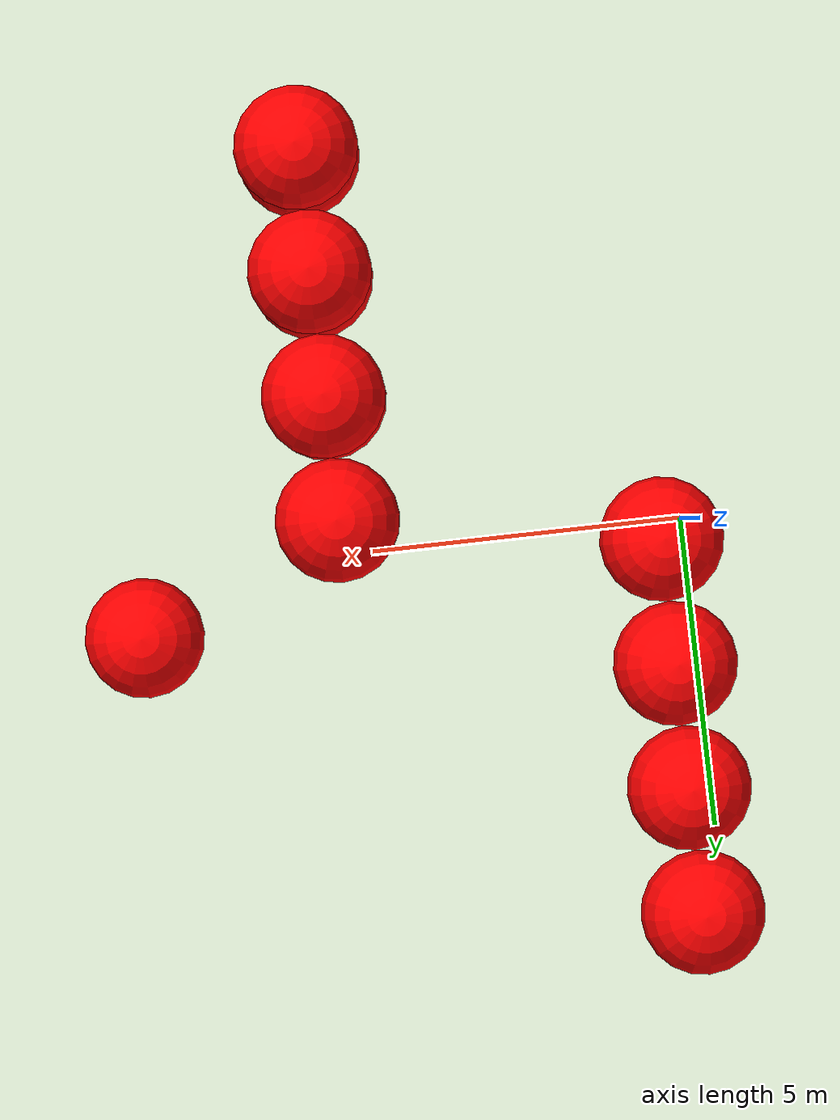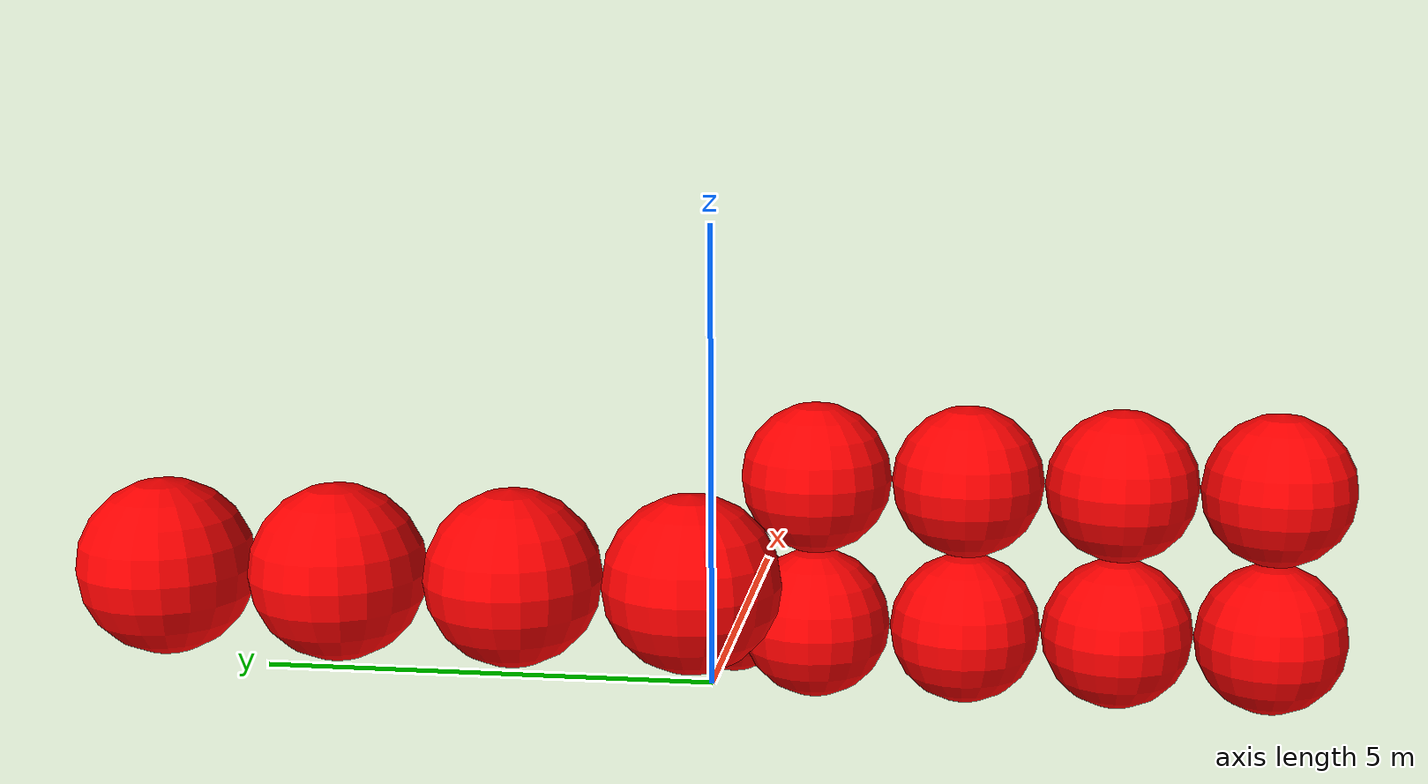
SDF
<sdf version="1.8">
 <world name="3d_world">
  <model name="obstacle_9" canonical_link="obstacle">
   <static>true</static>
   <pose relative_to="world">0.39 0.29 1.00 0 0 0</pose>
   <link name="obstacle">
    <pose relative_to="__model__">0.0 0 0.0 0 0 0</pose>
    <visual name="visual">
     <geometry><sphere><radius>1.00</radius></sphere></geometry>
     <material>
      <ambient>1.0 0.0 0.0 1</ambient>
      <diffuse>1.0 0.0 0.0 1</diffuse>
      <specular>1.0 0.0 0.0 1</specular>
     </material>
    </visual>
    <collision name="collision"><geometry><sphere><radius>1.00</radius></sphere></geometry></collision>
    <enable_gravity>false</enable_gravity>
   </link>
   <plugin filename="ignition-gazebo-velocity-control-system" name="ignition::gazebo::systems::VelocityControl">
    <initial_linear>0.00 0.00 0.00</initial_linear>
    <initial_angular>0 0 0</initial_angular>
   </plugin>
   <plugin filename="ignition-gazebo-odometry-publisher-system" name="ignition::gazebo::systems::OdometryPublisher">
    <dimensions>3</dimensions>
   </plugin>
  </model>
  <model name="obstacle_10" canonical_link="obstacle">
   <static>true</static>
   <pose relative_to="world">0.39 2.29 1.00 0 0 0</pose>
   <link name="obstacle">
    <pose relative_to="__model__">0.0 0 0.0 0 0 0</pose>
    <visual name="visual">
     <geometry><sphere><radius>1.00</radius></sphere></geometry>
     <material>
      <ambient>1.0 0.0 0.0 1</ambient>
      <diffuse>1.0 0.0 0.0 1</diffuse>
      <specular>1.0 0.0 0.0 1</specular>
     </material>
    </visual>
    <collision name="collision"><geometry><sphere><radius>1.00</radius></sphere></geometry></collision>
    <enable_gravity>false</enable_gravity>
   </link>
   <plugin filename="ignition-gazebo-velocity-control-system" name="ignition::gazebo::systems::VelocityControl">
    <initial_linear>0.00 0.00 0.00</initial_linear>
    <initial_angular>0 0 0</initial_angular>
   </plugin>
   <plugin filename="ignition-gazebo-odometry-publisher-system" name="ignition::gazebo::systems::OdometryPublisher">
    <dimensions>3</dimensions>
   </plugin>
  </model>
  <model name="obstacle_11" canonical_link="obstacle">
   <static>true</static>
   <pose relative_to="world">0.39 4.29 1.00 0 0 0</pose>
   <link name="obstacle">
    <pose relative_to="__model__">0.0 0 0.0 0 0 0</pose>
    <visual name="visual">
     <geometry><sphere><radius>1.00</radius></sphere></geometry>
     <material>
      <ambient>1.0 0.0 0.0 1</ambient>
      <diffuse>1.0 0.0 0.0 1</diffuse>
      <specular>1.0 0.0 0.0 1</specular>
     </material>
    </visual>
    <collision name="collision"><geometry><sphere><radius>1.00</radius></sphere></geometry></collision>
    <enable_gravity>false</enable_gravity>
   </link>
   <plugin filename="ignition-gazebo-velocity-control-system" name="ignition::gazebo::systems::VelocityControl">
    <initial_linear>0.00 0.00 0.00</initial_linear>
    <initial_angular>0 0 0</initial_angular>
   </plugin>
   <plugin filename="ignition-gazebo-odometry-publisher-system" name="ignition::gazebo::systems::OdometryPublisher">
    <dimensions>3</dimensions>
   </plugin>
  </model>
  <model name="obstacle_12" canonical_link="obstacle">
   <static>true</static>
   <pose relative_to="world">0.39 6.29 1.00 0 0 0</pose>
   <link name="obstacle">
    <pose relative_to="__model__">0.0 0 0.0 0 0 0</pose>
    <visual name="visual">
     <geometry><sphere><radius>1.00</radius></sphere></geometry>
     <material>
      <ambient>1.0 0.0 0.0 1</ambient>
      <diffuse>1.0 0.0 0.0 1</diffuse>
      <specular>1.0 0.0 0.0 1</specular>
     </material>
    </visual>
    <collision name="collision"><geometry><sphere><radius>1.00</radius></sphere></geometry></collision>
    <enable_gravity>false</enable_gravity>
   </link>
   <plugin filename="ignition-gazebo-velocity-control-system" name="ignition::gazebo::systems::VelocityControl">
    <initial_linear>0.00 0.00 0.00</initial_linear>
    <initial_angular>0 0 0</initial_angular>
   </plugin>
   <plugin filename="ignition-gazebo-odometry-publisher-system" name="ignition::gazebo::systems::OdometryPublisher">
    <dimensions>3</dimensions>
   </plugin>
  </model>
  <model name="obstacle_13" canonical_link="obstacle">
   <static>true</static>
   <pose relative_to="world">5.51 -6.58 -1.00 0 0 0</pose>
   <link name="obstacle">
    <pose relative_to="__model__">0.0 0 0.0 0 0 0</pose>
    <visual name="visual">
     <geometry><sphere><radius>1.00</radius></sphere></geometry>
     <material>
      <ambient>1.0 0.0 0.0 1</ambient>
      <diffuse>1.0 0.0 0.0 1</diffuse>
      <specular>1.0 0.0 0.0 1</specular>
     </material>
    </visual>
    <collision name="collision"><geometry><sphere><radius>1.00</radius></sphere></geometry></collision>
    <enable_gravity>false</enable_gravity>
   </link>
   <plugin filename="ignition-gazebo-velocity-control-system" name="ignition::gazebo::systems::VelocityControl">
    <initial_linear>0.00 0.00 0.00</initial_linear>
    <initial_angular>0 0 0</initial_angular>
   </plugin>
   <plugin filename="ignition-gazebo-odometry-publisher-system" name="ignition::gazebo::systems::OdometryPublisher">
    <dimensions>3</dimensions>
   </plugin>
  </model>
  <model name="obstacle_14" canonical_link="obstacle">
   <static>true</static>
   <pose relative_to="world">5.51 -4.58 -1.00 0 0 0</pose>
   <link name="obstacle">
    <pose relative_to="__model__">0.0 0 0.0 0 0 0</pose>
    <visual name="visual">
     <geometry><sphere><radius>1.00</radius></sphere></geometry>
     <material>
      <ambient>1.0 0.0 0.0 1</ambient>
      <diffuse>1.0 0.0 0.0 1</diffuse>
      <specular>1.0 0.0 0.0 1</specular>
     </material>
    </visual>
    <collision name="collision"><geometry><sphere><radius>1.00</radius></sphere></geometry></collision>
    <enable_gravity>false</enable_gravity>
   </link>
   <plugin filename="ignition-gazebo-velocity-control-system" name="ignition::gazebo::systems::VelocityControl">
    <initial_linear>0.00 0.00 0.00</initial_linear>
    <initial_angular>0 0 0</initial_angular>
   </plugin>
   <plugin filename="ignition-gazebo-odometry-publisher-system" name="ignition::gazebo::systems::OdometryPublisher">
    <dimensions>3</dimensions>
   </plugin>
  </model>
  <model name="obstacle_15" canonical_link="obstacle">
   <static>true</static>
   <pose relative_to="world">5.51 -2.58 -1.00 0 0 0</pose>
   <link name="obstacle">
    <pose relative_to="__model__">0.0 0 0.0 0 0 0</pose>
    <visual name="visual">
     <geometry><sphere><radius>1.00</radius></sphere></geometry>
     <material>
      <ambient>1.0 0.0 0.0 1</ambient>
      <diffuse>1.0 0.0 0.0 1</diffuse>
      <specular>1.0 0.0 0.0 1</specular>
     </material>
    </visual>
    <collision name="collision"><geometry><sphere><radius>1.00</radius></sphere></geometry></collision>
    <enable_gravity>false</enable_gravity>
   </link>
   <plugin filename="ignition-gazebo-velocity-control-system" name="ignition::gazebo::systems::VelocityControl">
    <initial_linear>0.00 0.00 0.00</initial_linear>
    <initial_angular>0 0 0</initial_angular>
   </plugin>
   <plugin filename="ignition-gazebo-odometry-publisher-system" name="ignition::gazebo::systems::OdometryPublisher">
    <dimensions>3</dimensions>
   </plugin>
  </model>
  <model name="obstacle_16" canonical_link="obstacle">
   <static>true</static>
   <pose relative_to="world">5.51 -0.58 -1.00 0 0 0</pose>
   <link name="obstacle">
    <pose relative_to="__model__">0.0 0 0.0 0 0 0</pose>
    <visual name="visual">
     <geometry><sphere><radius>1.00</radius></sphere></geometry>
     <material>
      <ambient>1.0 0.0 0.0 1</ambient>
      <diffuse>1.0 0.0 0.0 1</diffuse>
      <specular>1.0 0.0 0.0 1</specular>
     </material>
    </visual>
    <collision name="collision"><geometry><sphere><radius>1.00</radius></sphere></geometry></collision>
    <enable_gravity>false</enable_gravity>
   </link>
   <plugin filename="ignition-gazebo-velocity-control-system" name="ignition::gazebo::systems::VelocityControl">
    <initial_linear>0.00 0.00 0.00</initial_linear>
    <initial_angular>0 0 0</initial_angular>
   </plugin>
   <plugin filename="ignition-gazebo-odometry-publisher-system" name="ignition::gazebo::systems::OdometryPublisher">
    <dimensions>3</dimensions>
   </plugin>
  </model>
  <model name="obstacle_17" canonical_link="obstacle">
   <static>true</static>
   <pose relative_to="world">5.51 -6.58 1.00 0 0 0</pose>
   <link name="obstacle">
    <pose relative_to="__model__">0.0 0 0.0 0 0 0</pose>
    <visual name="visual">
     <geometry><sphere><radius>1.00</radius></sphere></geometry>
     <material>
      <ambient>1.0 0.0 0.0 1</ambient>
      <diffuse>1.0 0.0 0.0 1</diffuse>
      <specular>1.0 0.0 0.0 1</specular>
     </material>
    </visual>
    <collision name="collision"><geometry><sphere><radius>1.00</radius></sphere></geometry></collision>
    <enable_gravity>false</enable_gravity>
   </link>
   <plugin filename="ignition-gazebo-velocity-control-system" name="ignition::gazebo::systems::VelocityControl">
    <initial_linear>0.00 0.00 0.00</initial_linear>
    <initial_angular>0 0 0</initial_angular>
   </plugin>
   <plugin filename="ignition-gazebo-odometry-publisher-system" name="ignition::gazebo::systems::OdometryPublisher">
    <dimensions>3</dimensions>
   </plugin>
  </model>
  <model name="obstacle_18" canonical_link="obstacle">
   <static>true</static>
   <pose relative_to="world">5.51 -4.58 1.00 0 0 0</pose>
   <link name="obstacle">
    <pose relative_to="__model__">0.0 0 0.0 0 0 0</pose>
    <visual name="visual">
     <geometry><sphere><radius>1.00</radius></sphere></geometry>
     <material>
      <ambient>1.0 0.0 0.0 1</ambient>
      <diffuse>1.0 0.0 0.0 1</diffuse>
      <specular>1.0 0.0 0.0 1</specular>
     </material>
    </visual>
    <collision name="collision"><geometry><sphere><radius>1.00</radius></sphere></geometry></collision>
    <enable_gravity>false</enable_gravity>
   </link>
   <plugin filename="ignition-gazebo-velocity-control-system" name="ignition::gazebo::systems::VelocityControl">
    <initial_linear>0.00 0.00 0.00</initial_linear>
    <initial_angular>0 0 0</initial_angular>
   </plugin>
   <plugin filename="ignition-gazebo-odometry-publisher-system" name="ignition::gazebo::systems::OdometryPublisher">
    <dimensions>3</dimensions>
   </plugin>
  </model>
  <model name="obstacle_19" canonical_link="obstacle">
   <static>true</static>
   <pose relative_to="world">5.51 -2.58 1.00 0 0 0</pose>
   <link name="obstacle">
    <pose relative_to="__model__">0.0 0 0.0 0 0 0</pose>
    <visual name="visual">
     <geometry><sphere><radius>1.00</radius></sphere></geometry>
     <material>
      <ambient>1.0 0.0 0.0 1</ambient>
      <diffuse>1.0 0.0 0.0 1</diffuse>
      <specular>1.0 0.0 0.0 1</specular>
     </material>
    </visual>
    <collision name="collision"><geometry><sphere><radius>1.00</radius></sphere></geometry></collision>
    <enable_gravity>false</enable_gravity>
   </link>
   <plugin filename="ignition-gazebo-velocity-control-system" name="ignition::gazebo::systems::VelocityControl">
    <initial_linear>0.00 0.00 0.00</initial_linear>
    <initial_angular>0 0 0</initial_angular>
   </plugin>
   <plugin filename="ignition-gazebo-odometry-publisher-system" name="ignition::gazebo::systems::OdometryPublisher">
    <dimensions>3</dimensions>
   </plugin>
  </model>
  <model name="obstacle_20" canonical_link="obstacle">
   <static>true</static>
   <pose relative_to="world">5.51 -0.58 1.00 0 0 0</pose>
   <link name="obstacle">
    <pose relative_to="__model__">0.0 0 0.0 0 0 0</pose>
    <visual name="visual">
     <geometry><sphere><radius>1.00</radius></sphere></geometry>
     <material>
      <ambient>1.0 0.0 0.0 1</ambient>
      <diffuse>1.0 0.0 0.0 1</diffuse>
      <specular>1.0 0.0 0.0 1</specular>
     </material>
    </visual>
    <collision name="collision"><geometry><sphere><radius>1.00</radius></sphere></geometry></collision>
    <enable_gravity>false</enable_gravity>
   </link>
   <plugin filename="ignition-gazebo-velocity-control-system" name="ignition::gazebo::systems::VelocityControl">
    <initial_linear>0.00 0.00 0.00</initial_linear>
    <initial_angular>0 0 0</initial_angular>
   </plugin>
   <plugin filename="ignition-gazebo-odometry-publisher-system" name="ignition::gazebo::systems::OdometryPublisher">
    <dimensions>3</dimensions>
   </plugin>
  </model>
  <model name="obstacle_25" canonical_link="obstacle">
   <static>false</static>
   <pose relative_to="world">8.96 1.00 -1.87 0 0 0</pose>
   <link name="obstacle">
    <pose relative_to="__model__">0.0 0 0.0 0 0 0</pose>
    <visual name="visual">
     <geometry><sphere><radius>1.00</radius></sphere></geometry>
     <material>
      <ambient>1.0 0.0 0.0 1</ambient>
      <diffuse>1.0 0.0 0.0 1</diffuse>
      <specular>1.0 0.0 0.0 1</specular>
     </material>
    </visual>
    <collision name="collision"><geometry><sphere><radius>1.00</radius></sphere></geometry></collision>
    <enable_gravity>false</enable_gravity>
   </link>
   <plugin filename="ignition-gazebo-velocity-control-system" name="ignition::gazebo::systems::VelocityControl">
    <initial_linear>0.00 -0.33 0.53</initial_linear>
    <initial_angular>0 0 0</initial_angular>
   </plugin>
   <plugin filename="ignition-gazebo-odometry-publisher-system" name="ignition::gazebo::systems::OdometryPublisher">
    <dimensions>3</dimensions>
   </plugin>
  </model>
 </world>
</sdf>
